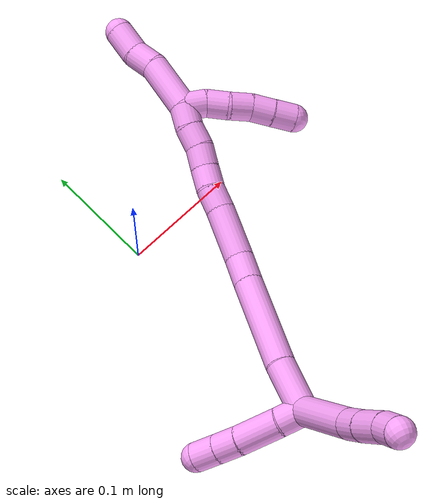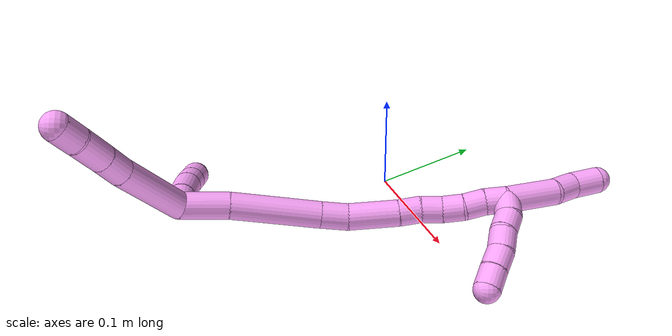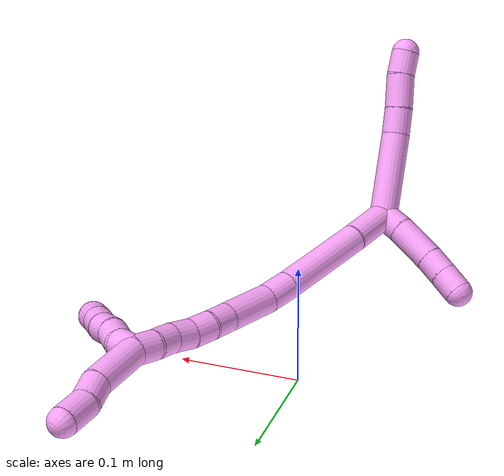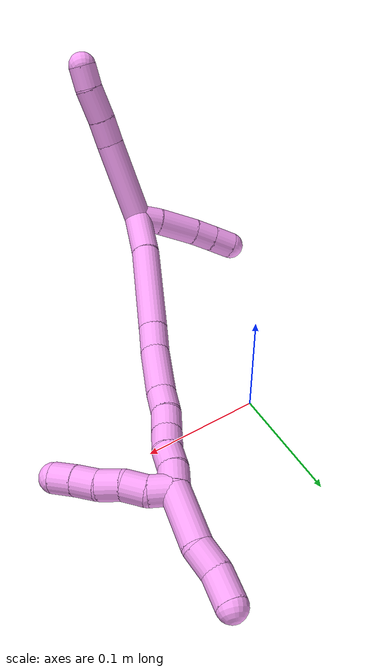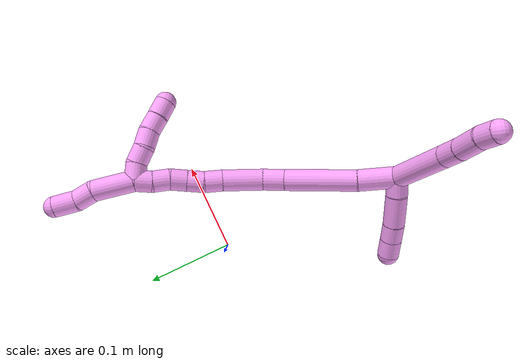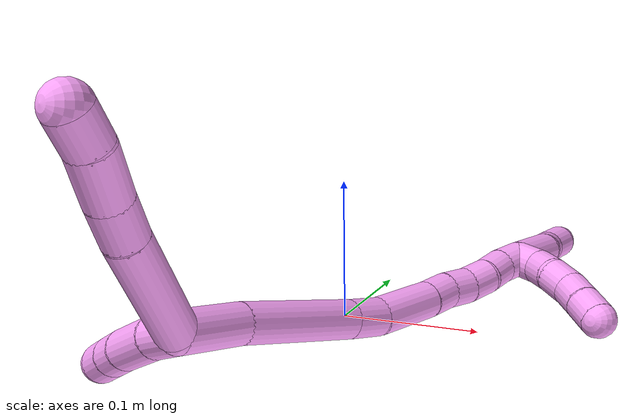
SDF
<sdf version="1.7">
 <world name="default">
  <model name="4">
   <static>0</static>
   <link name="4">
    <collision name="collision-cylinder-e_1_2_8">
     <pose>0.025571 0.010379 0.024933 -0.394476 0.758094 -0.158858</pose>
     <geometry><cylinder><radius>0.0125</radius><length>0.074384</length></cylinder></geometry>
     <surface>
      <friction><ode><mu>1.16</mu><mu2>1.16</mu2><slip1>0</slip1><slip2>0</slip2></ode></friction>
      <contact><ode><kp>1e+06</kp><kd>1</kd><max_vel>0</max_vel><min_depth>0.001</min_depth></ode></contact>
     </surface>
    </collision>
    <visual name="visual-cylinder-e_1_2_8">
     <pose>0.025571 0.010379 0.024933 -0.394476 0.758094 -0.158858</pose>
     <geometry><cylinder><radius>0.0125</radius><length>0.074384</length></cylinder></geometry>
     <material><ambient>1 0.65098 0.996078 1</ambient></material>
    </visual>
    <collision name="collision-cylinder-e_2_8_9">
     <pose>0.059832 0.024693 0.05709 -0.498692 0.812765 -0.218296</pose>
     <geometry><cylinder><radius>0.0125</radius><length>0.023932</length></cylinder></geometry>
     <surface>
      <friction><ode><mu>1.16</mu><mu2>1.16</mu2><slip1>0</slip1><slip2>0</slip2></ode></friction>
      <contact><ode><kp>1e+06</kp><kd>1</kd><max_vel>0</max_vel><min_depth>0.001</min_depth></ode></contact>
     </surface>
    </collision>
    <visual name="visual-cylinder-e_2_8_9">
     <pose>0.059832 0.024693 0.05709 -0.498692 0.812765 -0.218296</pose>
     <geometry><cylinder><radius>0.0125</radius><length>0.023932</length></cylinder></geometry>
     <material><ambient>1 0.65098 0.996078 1</ambient></material>
    </visual>
    <collision name="collision-cylinder-e_3_9_10">
     <pose>0.080115 0.033007 0.073196 -0.458071 0.863944 -0.214125</pose>
     <geometry><cylinder><radius>0.0125</radius><length>0.030495</length></cylinder></geometry>
     <surface>
      <friction><ode><mu>1.16</mu><mu2>1.16</mu2><slip1>0</slip1><slip2>0</slip2></ode></friction>
      <contact><ode><kp>1e+06</kp><kd>1</kd><max_vel>0</max_vel><min_depth>0.001</min_depth></ode></contact>
     </surface>
    </collision>
    <visual name="visual-cylinder-e_3_9_10">
     <pose>0.080115 0.033007 0.073196 -0.458071 0.863944 -0.214125</pose>
     <geometry><cylinder><radius>0.0125</radius><length>0.030495</length></cylinder></geometry>
     <material><ambient>1 0.65098 0.996078 1</ambient></material>
    </visual>
    <collision name="collision-cylinder-e_4_10_6">
     <pose>0.098649 0.041114 0.089162 -0.484396 0.714231 -0.183834</pose>
     <geometry><cylinder><radius>0.0125</radius><length>0.021189</length></cylinder></geometry>
     <surface>
      <friction><ode><mu>1.16</mu><mu2>1.16</mu2><slip1>0</slip1><slip2>0</slip2></ode></friction>
      <contact><ode><kp>1e+06</kp><kd>1</kd><max_vel>0</max_vel><min_depth>0.001</min_depth></ode></contact>
     </surface>
    </collision>
    <visual name="visual-cylinder-e_4_10_6">
     <pose>0.098649 0.041114 0.089162 -0.484396 0.714231 -0.183834</pose>
     <geometry><cylinder><radius>0.0125</radius><length>0.021189</length></cylinder></geometry>
     <material><ambient>1 0.65098 0.996078 1</ambient></material>
    </visual>
    <collision name="collision-cylinder-e_1_2_11">
     <pose>-0.009153 0.005418 -0.001226 -1.79329 -1.02529 1.22734</pose>
     <geometry><cylinder><radius>0.0125</radius><length>0.021414</length></cylinder></geometry>
     <surface>
      <friction><ode><mu>1.16</mu><mu2>1.16</mu2><slip1>0</slip1><slip2>0</slip2></ode></friction>
      <contact><ode><kp>1e+06</kp><kd>1</kd><max_vel>0</max_vel><min_depth>0.001</min_depth></ode></contact>
     </surface>
    </collision>
    <visual name="visual-cylinder-e_1_2_11">
     <pose>-0.009153 0.005418 -0.001226 -1.79329 -1.02529 1.22734</pose>
     <geometry><cylinder><radius>0.0125</radius><length>0.021414</length></cylinder></geometry>
     <material><ambient>1 0.65098 0.996078 1</ambient></material>
    </visual>
    <collision name="collision-cylinder-e_2_11_12">
     <pose>-0.034924 0.018747 -0.005738 -1.96451 -1.09485 1.48021</pose>
     <geometry><cylinder><radius>0.0125</radius><length>0.03739</length></cylinder></geometry>
     <surface>
      <friction><ode><mu>1.16</mu><mu2>1.16</mu2><slip1>0</slip1><slip2>0</slip2></ode></friction>
      <contact><ode><kp>1e+06</kp><kd>1</kd><max_vel>0</max_vel><min_depth>0.001</min_depth></ode></contact>
     </surface>
    </collision>
    <visual name="visual-cylinder-e_2_11_12">
     <pose>-0.034924 0.018747 -0.005738 -1.96451 -1.09485 1.48021</pose>
     <geometry><cylinder><radius>0.0125</radius><length>0.03739</length></cylinder></geometry>
     <material><ambient>1 0.65098 0.996078 1</ambient></material>
    </visual>
    <collision name="collision-cylinder-e_3_12_13">
     <pose>-0.06053 0.030657 -0.011455 -2.117 -1.09079 1.64673</pose>
     <geometry><cylinder><radius>0.0125</radius><length>0.020269</length></cylinder></geometry>
     <surface>
      <friction><ode><mu>1.16</mu><mu2>1.16</mu2><slip1>0</slip1><slip2>0</slip2></ode></friction>
      <contact><ode><kp>1e+06</kp><kd>1</kd><max_vel>0</max_vel><min_depth>0.001</min_depth></ode></contact>
     </surface>
    </collision>
    <visual name="visual-cylinder-e_3_12_13">
     <pose>-0.06053 0.030657 -0.011455 -2.117 -1.09079 1.64673</pose>
     <geometry><cylinder><radius>0.0125</radius><length>0.020269</length></cylinder></geometry>
     <material><ambient>1 0.65098 0.996078 1</ambient></material>
    </visual>
    <collision name="collision-cylinder-e_4_13_5">
     <pose>-0.078798 0.038717 -0.01651 -2.14453 -1.09041 1.67866</pose>
     <geometry><cylinder><radius>0.0125</radius><length>0.020926</length></cylinder></geometry>
     <surface>
      <friction><ode><mu>1.16</mu><mu2>1.16</mu2><slip1>0</slip1><slip2>0</slip2></ode></friction>
      <contact><ode><kp>1e+06</kp><kd>1</kd><max_vel>0</max_vel><min_depth>0.001</min_depth></ode></contact>
     </surface>
    </collision>
    <visual name="visual-cylinder-e_4_13_5">
     <pose>-0.078798 0.038717 -0.01651 -2.14453 -1.09041 1.67866</pose>
     <geometry><cylinder><radius>0.0125</radius><length>0.020926</length></cylinder></geometry>
     <material><ambient>1 0.65098 0.996078 1</ambient></material>
    </visual>
    <collision name="collision-cylinder-e_1_2_14">
     <pose>0.001059 0.000261 -0.021933 -3.12972 0.048244 -2.65892</pose>
     <geometry><cylinder><radius>0.0125</radius><length>0.04392</length></cylinder></geometry>
     <surface>
      <friction><ode><mu>1.16</mu><mu2>1.16</mu2><slip1>0</slip1><slip2>0</slip2></ode></friction>
      <contact><ode><kp>1e+06</kp><kd>1</kd><max_vel>0</max_vel><min_depth>0.001</min_depth></ode></contact>
     </surface>
    </collision>
    <visual name="visual-cylinder-e_1_2_14">
     <pose>0.001059 0.000261 -0.021933 -3.12972 0.048244 -2.65892</pose>
     <geometry><cylinder><radius>0.0125</radius><length>0.04392</length></cylinder></geometry>
     <material><ambient>1 0.65098 0.996078 1</ambient></material>
    </visual>
    <collision name="collision-cylinder-e_2_14_15">
     <pose>0.004589 -0.003429 -0.085016 3.0459 0.059706 1.11527</pose>
     <geometry><cylinder><radius>0.0125</radius><length>0.082828</length></cylinder></geometry>
     <surface>
      <friction><ode><mu>1.16</mu><mu2>1.16</mu2><slip1>0</slip1><slip2>0</slip2></ode></friction>
      <contact><ode><kp>1e+06</kp><kd>1</kd><max_vel>0</max_vel><min_depth>0.001</min_depth></ode></contact>
     </surface>
    </collision>
    <visual name="visual-cylinder-e_2_14_15">
     <pose>0.004589 -0.003429 -0.085016 3.0459 0.059706 1.11527</pose>
     <geometry><cylinder><radius>0.0125</radius><length>0.082828</length></cylinder></geometry>
     <material><ambient>1 0.65098 0.996078 1</ambient></material>
    </visual>
    <collision name="collision-cylinder-e_3_15_16">
     <pose>0.008354 -0.008367 -0.13872 3.06301 0.102412 1.83296</pose>
     <geometry><cylinder><radius>0.0125</radius><length>0.025317</length></cylinder></geometry>
     <surface>
      <friction><ode><mu>1.16</mu><mu2>1.16</mu2><slip1>0</slip1><slip2>0</slip2></ode></friction>
      <contact><ode><kp>1e+06</kp><kd>1</kd><max_vel>0</max_vel><min_depth>0.001</min_depth></ode></contact>
     </surface>
    </collision>
    <visual name="visual-cylinder-e_3_15_16">
     <pose>0.008354 -0.008367 -0.13872 3.06301 0.102412 1.83296</pose>
     <geometry><cylinder><radius>0.0125</radius><length>0.025317</length></cylinder></geometry>
     <material><ambient>1 0.65098 0.996078 1</ambient></material>
    </visual>
    <collision name="collision-cylinder-e_4_16_17">
     <pose>0.014537 -0.00779 -0.174189 -3.07338 0.209715 -2.51458</pose>
     <geometry><cylinder><radius>0.0125</radius><length>0.046968</length></cylinder></geometry>
     <surface>
      <friction><ode><mu>1.16</mu><mu2>1.16</mu2><slip1>0</slip1><slip2>0</slip2></ode></friction>
      <contact><ode><kp>1e+06</kp><kd>1</kd><max_vel>0</max_vel><min_depth>0.001</min_depth></ode></contact>
     </surface>
    </collision>
    <visual name="visual-cylinder-e_4_16_17">
     <pose>0.014537 -0.00779 -0.174189 -3.07338 0.209715 -2.51458</pose>
     <geometry><cylinder><radius>0.0125</radius><length>0.046968</length></cylinder></geometry>
     <material><ambient>1 0.65098 0.996078 1</ambient></material>
    </visual>
    <collision name="collision-cylinder-e_5_17_18">
     <pose>0.021577 -0.004663 -0.207242 -2.9888 0.206704 -1.87004</pose>
     <geometry><cylinder><radius>0.0125</radius><length>0.020958</length></cylinder></geometry>
     <surface>
      <friction><ode><mu>1.16</mu><mu2>1.16</mu2><slip1>0</slip1><slip2>0</slip2></ode></friction>
      <contact><ode><kp>1e+06</kp><kd>1</kd><max_vel>0</max_vel><min_depth>0.001</min_depth></ode></contact>
     </surface>
    </collision>
    <visual name="visual-cylinder-e_5_17_18">
     <pose>0.021577 -0.004663 -0.207242 -2.9888 0.206704 -1.87004</pose>
     <geometry><cylinder><radius>0.0125</radius><length>0.020958</length></cylinder></geometry>
     <material><ambient>1 0.65098 0.996078 1</ambient></material>
    </visual>
    <collision name="collision-cylinder-e_6_18_19">
     <pose>0.026193 -0.003342 -0.227069 3.11689 0.249056 2.9449</pose>
     <geometry><cylinder><radius>0.0125</radius><length>0.020007</length></cylinder></geometry>
     <surface>
      <friction><ode><mu>1.16</mu><mu2>1.16</mu2><slip1>0</slip1><slip2>0</slip2></ode></friction>
      <contact><ode><kp>1e+06</kp><kd>1</kd><max_vel>0</max_vel><min_depth>0.001</min_depth></ode></contact>
     </surface>
    </collision>
    <visual name="visual-cylinder-e_6_18_19">
     <pose>0.026193 -0.003342 -0.227069 3.11689 0.249056 2.9449</pose>
     <geometry><cylinder><radius>0.0125</radius><length>0.020007</length></cylinder></geometry>
     <material><ambient>1 0.65098 0.996078 1</ambient></material>
    </visual>
    <collision name="collision-cylinder-e_7_19_20">
     <pose>0.032403 -0.002795 -0.246001 -3.0567 0.383756 -2.71109</pose>
     <geometry><cylinder><radius>0.0125</radius><length>0.020001</length></cylinder></geometry>
     <surface>
      <friction><ode><mu>1.16</mu><mu2>1.16</mu2><slip1>0</slip1><slip2>0</slip2></ode></friction>
      <contact><ode><kp>1e+06</kp><kd>1</kd><max_vel>0</max_vel><min_depth>0.001</min_depth></ode></contact>
     </surface>
    </collision>
    <visual name="visual-cylinder-e_7_19_20">
     <pose>0.032403 -0.002795 -0.246001 -3.0567 0.383756 -2.71109</pose>
     <geometry><cylinder><radius>0.0125</radius><length>0.020001</length></cylinder></geometry>
     <material><ambient>1 0.65098 0.996078 1</ambient></material>
    </visual>
    <collision name="collision-cylinder-e_8_20_21">
     <pose>0.038455 0.000366 -0.264677 -2.89502 0.232829 -1.51294</pose>
     <geometry><cylinder><radius>0.0125</radius><length>0.020001</length></cylinder></geometry>
     <surface>
      <friction><ode><mu>1.16</mu><mu2>1.16</mu2><slip1>0</slip1><slip2>0</slip2></ode></friction>
      <contact><ode><kp>1e+06</kp><kd>1</kd><max_vel>0</max_vel><min_depth>0.001</min_depth></ode></contact>
     </surface>
    </collision>
    <visual name="visual-cylinder-e_8_20_21">
     <pose>0.038455 0.000366 -0.264677 -2.89502 0.232829 -1.51294</pose>
     <geometry><cylinder><radius>0.0125</radius><length>0.020001</length></cylinder></geometry>
     <material><ambient>1 0.65098 0.996078 1</ambient></material>
    </visual>
    <collision name="collision-cylinder-e_9_21_1">
     <pose>0.044082 0.003398 -0.283524 -3.07189 0.338364 -2.73891</pose>
     <geometry><cylinder><radius>0.0125</radius><length>0.020003</length></cylinder></geometry>
     <surface>
      <friction><ode><mu>1.16</mu><mu2>1.16</mu2><slip1>0</slip1><slip2>0</slip2></ode></friction>
      <contact><ode><kp>1e+06</kp><kd>1</kd><max_vel>0</max_vel><min_depth>0.001</min_depth></ode></contact>
     </surface>
    </collision>
    <visual name="visual-cylinder-e_9_21_1">
     <pose>0.044082 0.003398 -0.283524 -3.07189 0.338364 -2.73891</pose>
     <geometry><cylinder><radius>0.0125</radius><length>0.020003</length></cylinder></geometry>
     <material><ambient>1 0.65098 0.996078 1</ambient></material>
    </visual>
    <collision name="collision-cylinder-e_1_1_22">
     <pose>0.047309 0.008229 -0.317271 -2.97174 -0.003777 0.04436</pose>
     <geometry><cylinder><radius>0.0125</radius><length>0.049381</length></cylinder></geometry>
     <surface>
      <friction><ode><mu>1.16</mu><mu2>1.16</mu2><slip1>0</slip1><slip2>0</slip2></ode></friction>
      <contact><ode><kp>1e+06</kp><kd>1</kd><max_vel>0</max_vel><min_depth>0.001</min_depth></ode></contact>
     </surface>
    </collision>
    <visual name="visual-cylinder-e_1_1_22">
     <pose>0.047309 0.008229 -0.317271 -2.97174 -0.003777 0.04436</pose>
     <geometry><cylinder><radius>0.0125</radius><length>0.049381</length></cylinder></geometry>
     <material><ambient>1 0.65098 0.996078 1</ambient></material>
    </visual>
    <collision name="collision-cylinder-e_2_22_23">
     <pose>0.044264 0.015985 -0.352271 -2.8175 -0.256517 1.33584</pose>
     <geometry><cylinder><radius>0.0125</radius><length>0.023264</length></cylinder></geometry>
     <surface>
      <friction><ode><mu>1.16</mu><mu2>1.16</mu2><slip1>0</slip1><slip2>0</slip2></ode></friction>
      <contact><ode><kp>1e+06</kp><kd>1</kd><max_vel>0</max_vel><min_depth>0.001</min_depth></ode></contact>
     </surface>
    </collision>
    <visual name="visual-cylinder-e_2_22_23">
     <pose>0.044264 0.015985 -0.352271 -2.8175 -0.256517 1.33584</pose>
     <geometry><cylinder><radius>0.0125</radius><length>0.023264</length></cylinder></geometry>
     <material><ambient>1 0.65098 0.996078 1</ambient></material>
    </visual>
    <collision name="collision-cylinder-e_3_23_4">
     <pose>0.041535 0.022517 -0.376291 -2.92427 0.016232 -0.14852</pose>
     <geometry><cylinder><radius>0.0125</radius><length>0.027355</length></cylinder></geometry>
     <surface>
      <friction><ode><mu>1.16</mu><mu2>1.16</mu2><slip1>0</slip1><slip2>0</slip2></ode></friction>
      <contact><ode><kp>1e+06</kp><kd>1</kd><max_vel>0</max_vel><min_depth>0.001</min_depth></ode></contact>
     </surface>
    </collision>
    <visual name="visual-cylinder-e_3_23_4">
     <pose>0.041535 0.022517 -0.376291 -2.92427 0.016232 -0.14852</pose>
     <geometry><cylinder><radius>0.0125</radius><length>0.027355</length></cylinder></geometry>
     <material><ambient>1 0.65098 0.996078 1</ambient></material>
    </visual>
    <collision name="collision-cylinder-e_1_1_24">
     <pose>0.052664 -0.004283 -0.291268 1.37338 0.554128 0.458076</pose>
     <geometry><cylinder><radius>0.0125</radius><length>0.02</length></cylinder></geometry>
     <surface>
      <friction><ode><mu>1.16</mu><mu2>1.16</mu2><slip1>0</slip1><slip2>0</slip2></ode></friction>
      <contact><ode><kp>1e+06</kp><kd>1</kd><max_vel>0</max_vel><min_depth>0.001</min_depth></ode></contact>
     </surface>
    </collision>
    <visual name="visual-cylinder-e_1_1_24">
     <pose>0.052664 -0.004283 -0.291268 1.37338 0.554128 0.458076</pose>
     <geometry><cylinder><radius>0.0125</radius><length>0.02</length></cylinder></geometry>
     <material><ambient>1 0.65098 0.996078 1</ambient></material>
    </visual>
    <collision name="collision-cylinder-e_2_24_25">
     <pose>0.062337 -0.020136 -0.284692 0.992242 0.456782 0.250321</pose>
     <geometry><cylinder><radius>0.0125</radius><length>0.02</length></cylinder></geometry>
     <surface>
      <friction><ode><mu>1.16</mu><mu2>1.16</mu2><slip1>0</slip1><slip2>0</slip2></ode></friction>
      <contact><ode><kp>1e+06</kp><kd>1</kd><max_vel>0</max_vel><min_depth>0.001</min_depth></ode></contact>
     </surface>
    </collision>
    <visual name="visual-cylinder-e_2_24_25">
     <pose>0.062337 -0.020136 -0.284692 0.992242 0.456782 0.250321</pose>
     <geometry><cylinder><radius>0.0125</radius><length>0.02</length></cylinder></geometry>
     <material><ambient>1 0.65098 0.996078 1</ambient></material>
    </visual>
    <collision name="collision-cylinder-e_3_25_26">
     <pose>0.070186 -0.036534 -0.276745 1.24109 0.351031 0.252157</pose>
     <geometry><cylinder><radius>0.0125</radius><length>0.02</length></cylinder></geometry>
     <surface>
      <friction><ode><mu>1.16</mu><mu2>1.16</mu2><slip1>0</slip1><slip2>0</slip2></ode></friction>
      <contact><ode><kp>1e+06</kp><kd>1</kd><max_vel>0</max_vel><min_depth>0.001</min_depth></ode></contact>
     </surface>
    </collision>
    <visual name="visual-cylinder-e_3_25_26">
     <pose>0.070186 -0.036534 -0.276745 1.24109 0.351031 0.252157</pose>
     <geometry><cylinder><radius>0.0125</radius><length>0.02</length></cylinder></geometry>
     <material><ambient>1 0.65098 0.996078 1</ambient></material>
    </visual>
    <collision name="collision-cylinder-e_4_26_27">
     <pose>0.07639 -0.053672 -0.268782 1.03302 0.280179 0.159832</pose>
     <geometry><cylinder><radius>0.0125</radius><length>0.02</length></cylinder></geometry>
     <surface>
      <friction><ode><mu>1.16</mu><mu2>1.16</mu2><slip1>0</slip1><slip2>0</slip2></ode></friction>
      <contact><ode><kp>1e+06</kp><kd>1</kd><max_vel>0</max_vel><min_depth>0.001</min_depth></ode></contact>
     </surface>
    </collision>
    <visual name="visual-cylinder-e_4_26_27">
     <pose>0.07639 -0.053672 -0.268782 1.03302 0.280179 0.159832</pose>
     <geometry><cylinder><radius>0.0125</radius><length>0.02</length></cylinder></geometry>
     <material><ambient>1 0.65098 0.996078 1</ambient></material>
    </visual>
    <collision name="collision-cylinder-e_5_27_3">
     <pose>0.081597 -0.070526 -0.259379 1.09058 0.246729 0.150157</pose>
     <geometry><cylinder><radius>0.0125</radius><length>0.02</length></cylinder></geometry>
     <surface>
      <friction><ode><mu>1.16</mu><mu2>1.16</mu2><slip1>0</slip1><slip2>0</slip2></ode></friction>
      <contact><ode><kp>1e+06</kp><kd>1</kd><max_vel>0</max_vel><min_depth>0.001</min_depth></ode></contact>
     </surface>
    </collision>
    <visual name="visual-cylinder-e_5_27_3">
     <pose>0.081597 -0.070526 -0.259379 1.09058 0.246729 0.150157</pose>
     <geometry><cylinder><radius>0.0125</radius><length>0.02</length></cylinder></geometry>
     <material><ambient>1 0.65098 0.996078 1</ambient></material>
    </visual>
    <collision name="collision-sphere-3">
     <pose>0.08404 -0.079127 -0.2549 0 -0 0</pose>
     <geometry><sphere><radius>0.0125</radius></sphere></geometry>
     <surface>
      <friction><ode><mu>1.16</mu><mu2>1.16</mu2><slip1>0</slip1><slip2>0</slip2></ode></friction>
      <contact><ode><kp>1e+06</kp><kd>1</kd><max_vel>0</max_vel><min_depth>0.001</min_depth></ode></contact>
     </surface>
    </collision>
    <visual name="visual-sphere-3">
     <pose>0.08404 -0.079127 -0.2549 0 -0 0</pose>
     <geometry><sphere><radius>0.0125</radius></sphere></geometry>
     <material><ambient>1 0.65098 0.996078 1</ambient></material>
    </visual>
    <collision name="collision-sphere-27">
     <pose>0.079155 -0.061926 -0.263859 0 -0 0</pose>
     <geometry><sphere><radius>0.0125</radius></sphere></geometry>
     <surface>
      <friction><ode><mu>1.16</mu><mu2>1.16</mu2><slip1>0</slip1><slip2>0</slip2></ode></friction>
      <contact><ode><kp>1e+06</kp><kd>1</kd><max_vel>0</max_vel><min_depth>0.001</min_depth></ode></contact>
     </surface>
    </collision>
    <visual name="visual-sphere-27">
     <pose>0.079155 -0.061926 -0.263859 0 -0 0</pose>
     <geometry><sphere><radius>0.0125</radius></sphere></geometry>
     <material><ambient>1 0.65098 0.996078 1</ambient></material>
    </visual>
    <collision name="collision-sphere-26">
     <pose>0.073625 -0.045419 -0.273704 0 -0 0</pose>
     <geometry><sphere><radius>0.0125</radius></sphere></geometry>
     <surface>
      <friction><ode><mu>1.16</mu><mu2>1.16</mu2><slip1>0</slip1><slip2>0</slip2></ode></friction>
      <contact><ode><kp>1e+06</kp><kd>1</kd><max_vel>0</max_vel><min_depth>0.001</min_depth></ode></contact>
     </surface>
    </collision>
    <visual name="visual-sphere-26">
     <pose>0.073625 -0.045419 -0.273704 0 -0 0</pose>
     <geometry><sphere><radius>0.0125</radius></sphere></geometry>
     <material><ambient>1 0.65098 0.996078 1</ambient></material>
    </visual>
    <collision name="collision-sphere-25">
     <pose>0.066747 -0.02765 -0.279785 0 -0 0</pose>
     <geometry><sphere><radius>0.0125</radius></sphere></geometry>
     <surface>
      <friction><ode><mu>1.16</mu><mu2>1.16</mu2><slip1>0</slip1><slip2>0</slip2></ode></friction>
      <contact><ode><kp>1e+06</kp><kd>1</kd><max_vel>0</max_vel><min_depth>0.001</min_depth></ode></contact>
     </surface>
    </collision>
    <visual name="visual-sphere-25">
     <pose>0.066747 -0.02765 -0.279785 0 -0 0</pose>
     <geometry><sphere><radius>0.0125</radius></sphere></geometry>
     <material><ambient>1 0.65098 0.996078 1</ambient></material>
    </visual>
    <collision name="collision-sphere-24">
     <pose>0.057926 -0.012622 -0.2896 0 -0 0</pose>
     <geometry><sphere><radius>0.0125</radius></sphere></geometry>
     <surface>
      <friction><ode><mu>1.16</mu><mu2>1.16</mu2><slip1>0</slip1><slip2>0</slip2></ode></friction>
      <contact><ode><kp>1e+06</kp><kd>1</kd><max_vel>0</max_vel><min_depth>0.001</min_depth></ode></contact>
     </surface>
    </collision>
    <visual name="visual-sphere-24">
     <pose>0.057926 -0.012622 -0.2896 0 -0 0</pose>
     <geometry><sphere><radius>0.0125</radius></sphere></geometry>
     <material><ambient>1 0.65098 0.996078 1</ambient></material>
    </visual>
    <collision name="collision-sphere-4">
     <pose>0.041757 0.025466 -0.389645 0 -0 0</pose>
     <geometry><sphere><radius>0.0125</radius></sphere></geometry>
     <surface>
      <friction><ode><mu>1.16</mu><mu2>1.16</mu2><slip1>0</slip1><slip2>0</slip2></ode></friction>
      <contact><ode><kp>1e+06</kp><kd>1</kd><max_vel>0</max_vel><min_depth>0.001</min_depth></ode></contact>
     </surface>
    </collision>
    <visual name="visual-sphere-4">
     <pose>0.041757 0.025466 -0.389645 0 -0 0</pose>
     <geometry><sphere><radius>0.0125</radius></sphere></geometry>
     <material><ambient>1 0.65098 0.996078 1</ambient></material>
    </visual>
    <collision name="collision-sphere-23">
     <pose>0.041313 0.019568 -0.362937 0 -0 0</pose>
     <geometry><sphere><radius>0.0125</radius></sphere></geometry>
     <surface>
      <friction><ode><mu>1.16</mu><mu2>1.16</mu2><slip1>0</slip1><slip2>0</slip2></ode></friction>
      <contact><ode><kp>1e+06</kp><kd>1</kd><max_vel>0</max_vel><min_depth>0.001</min_depth></ode></contact>
     </surface>
    </collision>
    <visual name="visual-sphere-23">
     <pose>0.041313 0.019568 -0.362937 0 -0 0</pose>
     <geometry><sphere><radius>0.0125</radius></sphere></geometry>
     <material><ambient>1 0.65098 0.996078 1</ambient></material>
    </visual>
    <collision name="collision-sphere-22">
     <pose>0.047215 0.012402 -0.341606 0 -0 0</pose>
     <geometry><sphere><radius>0.0125</radius></sphere></geometry>
     <surface>
      <friction><ode><mu>1.16</mu><mu2>1.16</mu2><slip1>0</slip1><slip2>0</slip2></ode></friction>
      <contact><ode><kp>1e+06</kp><kd>1</kd><max_vel>0</max_vel><min_depth>0.001</min_depth></ode></contact>
     </surface>
    </collision>
    <visual name="visual-sphere-22">
     <pose>0.047215 0.012402 -0.341606 0 -0 0</pose>
     <geometry><sphere><radius>0.0125</radius></sphere></geometry>
     <material><ambient>1 0.65098 0.996078 1</ambient></material>
    </visual>
    <collision name="collision-sphere-1">
     <pose>0.047402 0.004055 -0.292936 0 -0 0</pose>
     <geometry><sphere><radius>0.0125</radius></sphere></geometry>
     <surface>
      <friction><ode><mu>1.16</mu><mu2>1.16</mu2><slip1>0</slip1><slip2>0</slip2></ode></friction>
      <contact><ode><kp>1e+06</kp><kd>1</kd><max_vel>0</max_vel><min_depth>0.001</min_depth></ode></contact>
     </surface>
    </collision>
    <visual name="visual-sphere-1">
     <pose>0.047402 0.004055 -0.292936 0 -0 0</pose>
     <geometry><sphere><radius>0.0125</radius></sphere></geometry>
     <material><ambient>1 0.65098 0.996078 1</ambient></material>
    </visual>
    <collision name="collision-sphere-21">
     <pose>0.040762 0.002741 -0.274113 0 -0 0</pose>
     <geometry><sphere><radius>0.0125</radius></sphere></geometry>
     <surface>
      <friction><ode><mu>1.16</mu><mu2>1.16</mu2><slip1>0</slip1><slip2>0</slip2></ode></friction>
      <contact><ode><kp>1e+06</kp><kd>1</kd><max_vel>0</max_vel><min_depth>0.001</min_depth></ode></contact>
     </surface>
    </collision>
    <visual name="visual-sphere-21">
     <pose>0.040762 0.002741 -0.274113 0 -0 0</pose>
     <geometry><sphere><radius>0.0125</radius></sphere></geometry>
     <material><ambient>1 0.65098 0.996078 1</ambient></material>
    </visual>
    <collision name="collision-sphere-11">
     <pose>-0.018306 0.010837 -0.002452 0 -0 0</pose>
     <geometry><sphere><radius>0.0125</radius></sphere></geometry>
     <surface>
      <friction><ode><mu>1.16</mu><mu2>1.16</mu2><slip1>0</slip1><slip2>0</slip2></ode></friction>
      <contact><ode><kp>1e+06</kp><kd>1</kd><max_vel>0</max_vel><min_depth>0.001</min_depth></ode></contact>
     </surface>
    </collision>
    <visual name="visual-sphere-11">
     <pose>-0.018306 0.010837 -0.002452 0 -0 0</pose>
     <geometry><sphere><radius>0.0125</radius></sphere></geometry>
     <material><ambient>1 0.65098 0.996078 1</ambient></material>
    </visual>
    <collision name="collision-sphere-6">
     <pose>0.105589 0.044842 0.096246 0 -0 0</pose>
     <geometry><sphere><radius>0.0125</radius></sphere></geometry>
     <surface>
      <friction><ode><mu>1.16</mu><mu2>1.16</mu2><slip1>0</slip1><slip2>0</slip2></ode></friction>
      <contact><ode><kp>1e+06</kp><kd>1</kd><max_vel>0</max_vel><min_depth>0.001</min_depth></ode></contact>
     </surface>
    </collision>
    <visual name="visual-sphere-6">
     <pose>0.105589 0.044842 0.096246 0 -0 0</pose>
     <geometry><sphere><radius>0.0125</radius></sphere></geometry>
     <material><ambient>1 0.65098 0.996078 1</ambient></material>
    </visual>
    <collision name="collision-sphere-10">
     <pose>0.09171 0.037386 0.082078 0 -0 0</pose>
     <geometry><sphere><radius>0.0125</radius></sphere></geometry>
     <surface>
      <friction><ode><mu>1.16</mu><mu2>1.16</mu2><slip1>0</slip1><slip2>0</slip2></ode></friction>
      <contact><ode><kp>1e+06</kp><kd>1</kd><max_vel>0</max_vel><min_depth>0.001</min_depth></ode></contact>
     </surface>
    </collision>
    <visual name="visual-sphere-10">
     <pose>0.09171 0.037386 0.082078 0 -0 0</pose>
     <geometry><sphere><radius>0.0125</radius></sphere></geometry>
     <material><ambient>1 0.65098 0.996078 1</ambient></material>
    </visual>
    <collision name="collision-sphere-9">
     <pose>0.068521 0.028628 0.064315 0 -0 0</pose>
     <geometry><sphere><radius>0.0125</radius></sphere></geometry>
     <surface>
      <friction><ode><mu>1.16</mu><mu2>1.16</mu2><slip1>0</slip1><slip2>0</slip2></ode></friction>
      <contact><ode><kp>1e+06</kp><kd>1</kd><max_vel>0</max_vel><min_depth>0.001</min_depth></ode></contact>
     </surface>
    </collision>
    <visual name="visual-sphere-9">
     <pose>0.068521 0.028628 0.064315 0 -0 0</pose>
     <geometry><sphere><radius>0.0125</radius></sphere></geometry>
     <material><ambient>1 0.65098 0.996078 1</ambient></material>
    </visual>
    <collision name="collision-sphere-2">
     <geometry><sphere><radius>0.0125</radius></sphere></geometry>
     <surface>
      <friction><ode><mu>1.16</mu><mu2>1.16</mu2><slip1>0</slip1><slip2>0</slip2></ode></friction>
      <contact><ode><kp>1e+06</kp><kd>1</kd><max_vel>0</max_vel><min_depth>0.001</min_depth></ode></contact>
     </surface>
    </collision>
    <visual name="visual-sphere-2">
     <geometry><sphere><radius>0.0125</radius></sphere></geometry>
     <material><ambient>1 0.65098 0.996078 1</ambient></material>
    </visual>
    <collision name="collision-sphere-19">
     <pose>0.028659 -0.003581 -0.236761 0 -0 0</pose>
     <geometry><sphere><radius>0.0125</radius></sphere></geometry>
     <surface>
      <friction><ode><mu>1.16</mu><mu2>1.16</mu2><slip1>0</slip1><slip2>0</slip2></ode></friction>
      <contact><ode><kp>1e+06</kp><kd>1</kd><max_vel>0</max_vel><min_depth>0.001</min_depth></ode></contact>
     </surface>
    </collision>
    <visual name="visual-sphere-19">
     <pose>0.028659 -0.003581 -0.236761 0 -0 0</pose>
     <geometry><sphere><radius>0.0125</radius></sphere></geometry>
     <material><ambient>1 0.65098 0.996078 1</ambient></material>
    </visual>
    <collision name="collision-sphere-8">
     <pose>0.051142 0.020759 0.049866 0 -0 0</pose>
     <geometry><sphere><radius>0.0125</radius></sphere></geometry>
     <surface>
      <friction><ode><mu>1.16</mu><mu2>1.16</mu2><slip1>0</slip1><slip2>0</slip2></ode></friction>
      <contact><ode><kp>1e+06</kp><kd>1</kd><max_vel>0</max_vel><min_depth>0.001</min_depth></ode></contact>
     </surface>
    </collision>
    <visual name="visual-sphere-8">
     <pose>0.051142 0.020759 0.049866 0 -0 0</pose>
     <geometry><sphere><radius>0.0125</radius></sphere></geometry>
     <material><ambient>1 0.65098 0.996078 1</ambient></material>
    </visual>
    <collision name="collision-sphere-12">
     <pose>-0.051541 0.026658 -0.009024 0 -0 0</pose>
     <geometry><sphere><radius>0.0125</radius></sphere></geometry>
     <surface>
      <friction><ode><mu>1.16</mu><mu2>1.16</mu2><slip1>0</slip1><slip2>0</slip2></ode></friction>
      <contact><ode><kp>1e+06</kp><kd>1</kd><max_vel>0</max_vel><min_depth>0.001</min_depth></ode></contact>
     </surface>
    </collision>
    <visual name="visual-sphere-12">
     <pose>-0.051541 0.026658 -0.009024 0 -0 0</pose>
     <geometry><sphere><radius>0.0125</radius></sphere></geometry>
     <material><ambient>1 0.65098 0.996078 1</ambient></material>
    </visual>
    <collision name="collision-sphere-13">
     <pose>-0.06952 0.034656 -0.013886 0 -0 0</pose>
     <geometry><sphere><radius>0.0125</radius></sphere></geometry>
     <surface>
      <friction><ode><mu>1.16</mu><mu2>1.16</mu2><slip1>0</slip1><slip2>0</slip2></ode></friction>
      <contact><ode><kp>1e+06</kp><kd>1</kd><max_vel>0</max_vel><min_depth>0.001</min_depth></ode></contact>
     </surface>
    </collision>
    <visual name="visual-sphere-13">
     <pose>-0.06952 0.034656 -0.013886 0 -0 0</pose>
     <geometry><sphere><radius>0.0125</radius></sphere></geometry>
     <material><ambient>1 0.65098 0.996078 1</ambient></material>
    </visual>
    <collision name="collision-sphere-5">
     <pose>-0.088077 0.042778 -0.019135 0 -0 0</pose>
     <geometry><sphere><radius>0.0125</radius></sphere></geometry>
     <surface>
      <friction><ode><mu>1.16</mu><mu2>1.16</mu2><slip1>0</slip1><slip2>0</slip2></ode></friction>
      <contact><ode><kp>1e+06</kp><kd>1</kd><max_vel>0</max_vel><min_depth>0.001</min_depth></ode></contact>
     </surface>
    </collision>
    <visual name="visual-sphere-5">
     <pose>-0.088077 0.042778 -0.019135 0 -0 0</pose>
     <geometry><sphere><radius>0.0125</radius></sphere></geometry>
     <material><ambient>1 0.65098 0.996078 1</ambient></material>
    </visual>
    <collision name="collision-sphere-14">
     <pose>0.002118 0.000521 -0.043865 0 -0 0</pose>
     <geometry><sphere><radius>0.0125</radius></sphere></geometry>
     <surface>
      <friction><ode><mu>1.16</mu><mu2>1.16</mu2><slip1>0</slip1><slip2>0</slip2></ode></friction>
      <contact><ode><kp>1e+06</kp><kd>1</kd><max_vel>0</max_vel><min_depth>0.001</min_depth></ode></contact>
     </surface>
    </collision>
    <visual name="visual-sphere-14">
     <pose>0.002118 0.000521 -0.043865 0 -0 0</pose>
     <geometry><sphere><radius>0.0125</radius></sphere></geometry>
     <material><ambient>1 0.65098 0.996078 1</ambient></material>
    </visual>
    <collision name="collision-sphere-15">
     <pose>0.00706 -0.007379 -0.126167 0 -0 0</pose>
     <geometry><sphere><radius>0.0125</radius></sphere></geometry>
     <surface>
      <friction><ode><mu>1.16</mu><mu2>1.16</mu2><slip1>0</slip1><slip2>0</slip2></ode></friction>
      <contact><ode><kp>1e+06</kp><kd>1</kd><max_vel>0</max_vel><min_depth>0.001</min_depth></ode></contact>
     </surface>
    </collision>
    <visual name="visual-sphere-15">
     <pose>0.00706 -0.007379 -0.126167 0 -0 0</pose>
     <geometry><sphere><radius>0.0125</radius></sphere></geometry>
     <material><ambient>1 0.65098 0.996078 1</ambient></material>
    </visual>
    <collision name="collision-sphere-16">
     <pose>0.009649 -0.009356 -0.151274 0 -0 0</pose>
     <geometry><sphere><radius>0.0125</radius></sphere></geometry>
     <surface>
      <friction><ode><mu>1.16</mu><mu2>1.16</mu2><slip1>0</slip1><slip2>0</slip2></ode></friction>
      <contact><ode><kp>1e+06</kp><kd>1</kd><max_vel>0</max_vel><min_depth>0.001</min_depth></ode></contact>
     </surface>
    </collision>
    <visual name="visual-sphere-16">
     <pose>0.009649 -0.009356 -0.151274 0 -0 0</pose>
     <geometry><sphere><radius>0.0125</radius></sphere></geometry>
     <material><ambient>1 0.65098 0.996078 1</ambient></material>
    </visual>
    <collision name="collision-sphere-17">
     <pose>0.019426 -0.006224 -0.197105 0 -0 0</pose>
     <geometry><sphere><radius>0.0125</radius></sphere></geometry>
     <surface>
      <friction><ode><mu>1.16</mu><mu2>1.16</mu2><slip1>0</slip1><slip2>0</slip2></ode></friction>
      <contact><ode><kp>1e+06</kp><kd>1</kd><max_vel>0</max_vel><min_depth>0.001</min_depth></ode></contact>
     </surface>
    </collision>
    <visual name="visual-sphere-17">
     <pose>0.019426 -0.006224 -0.197105 0 -0 0</pose>
     <geometry><sphere><radius>0.0125</radius></sphere></geometry>
     <material><ambient>1 0.65098 0.996078 1</ambient></material>
    </visual>
    <collision name="collision-sphere-18">
     <pose>0.023728 -0.003103 -0.217378 0 -0 0</pose>
     <geometry><sphere><radius>0.0125</radius></sphere></geometry>
     <surface>
      <friction><ode><mu>1.16</mu><mu2>1.16</mu2><slip1>0</slip1><slip2>0</slip2></ode></friction>
      <contact><ode><kp>1e+06</kp><kd>1</kd><max_vel>0</max_vel><min_depth>0.001</min_depth></ode></contact>
     </surface>
    </collision>
    <visual name="visual-sphere-18">
     <pose>0.023728 -0.003103 -0.217378 0 -0 0</pose>
     <geometry><sphere><radius>0.0125</radius></sphere></geometry>
     <material><ambient>1 0.65098 0.996078 1</ambient></material>
    </visual>
    <collision name="collision-sphere-20">
     <pose>0.036147 -0.002009 -0.255241 0 -0 0</pose>
     <geometry><sphere><radius>0.0125</radius></sphere></geometry>
     <surface>
      <friction><ode><mu>1.16</mu><mu2>1.16</mu2><slip1>0</slip1><slip2>0</slip2></ode></friction>
      <contact><ode><kp>1e+06</kp><kd>1</kd><max_vel>0</max_vel><min_depth>0.001</min_depth></ode></contact>
     </surface>
    </collision>
    <visual name="visual-sphere-20">
     <pose>0.036147 -0.002009 -0.255241 0 -0 0</pose>
     <geometry><sphere><radius>0.0125</radius></sphere></geometry>
     <material><ambient>1 0.65098 0.996078 1</ambient></material>
    </visual>
    <inertial>
     <pose>0.025935 0.002913 -0.132959 0 -0 0</pose>
     <mass>0.75</mass>
     <inertia><ixx>9.9e-05</ixx><ixy>0</ixy><ixz>0</ixz><iyy>7.8e-05</iyy><iyz>0</iyz><izz>-6.4e-05</izz></inertia>
    </inertial>
   </link>
   <pose>-0.01047 -0.207206 0.054568 1.28728 -0.855661 -0.1251</pose>
  </model>
 </world>
</sdf>
